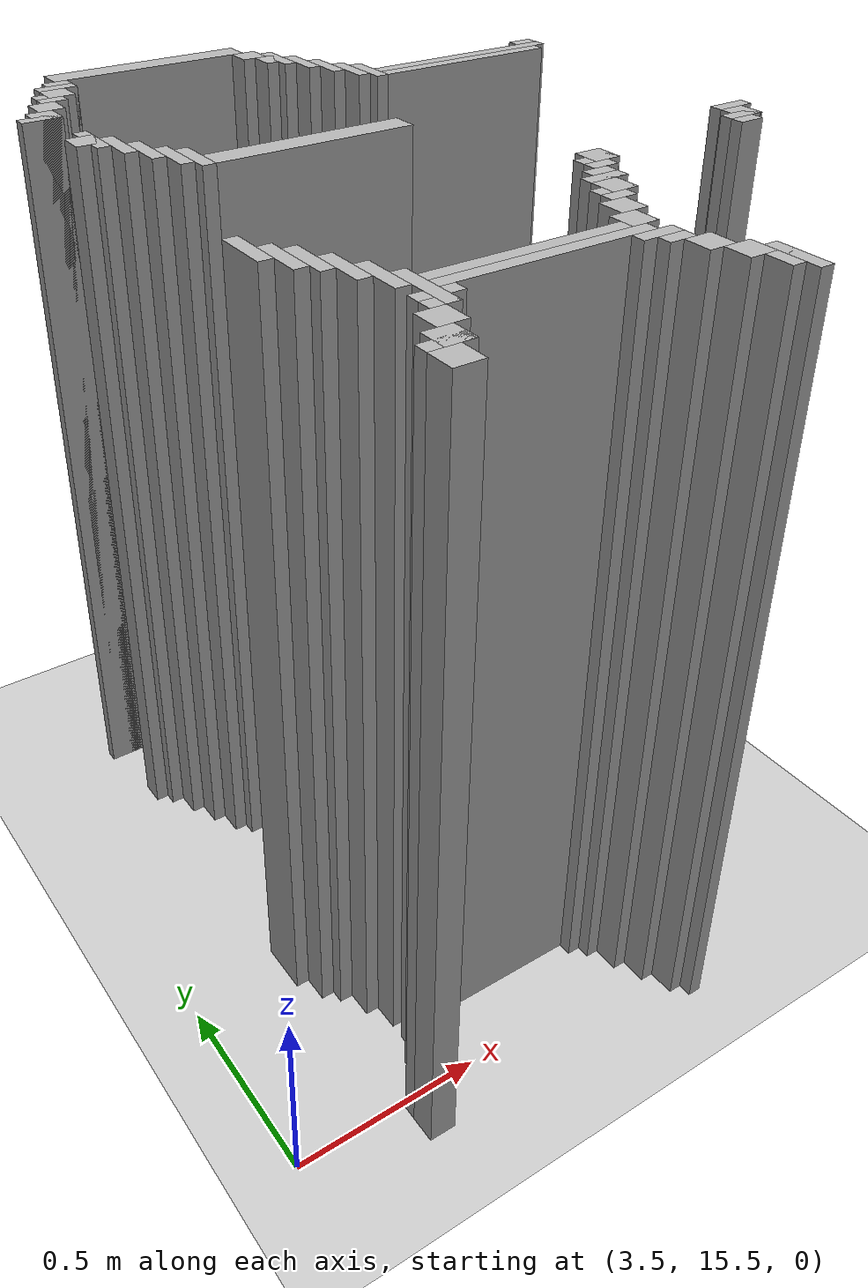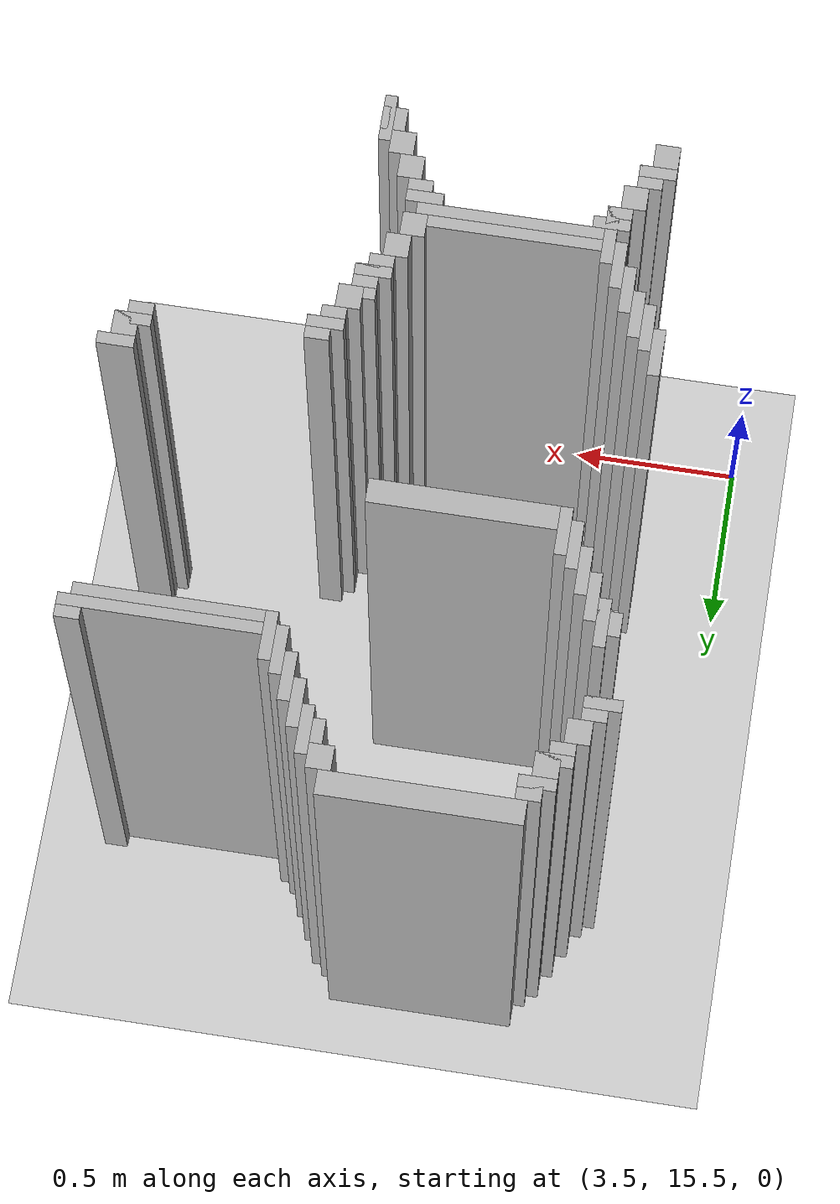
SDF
<sdf version="1.6">
 <world name="slam_world">
  <model name="ground_plane">
   <static>true</static>
   <link name="link">
    <collision name="collision">
     <geometry><plane><normal>0 0 1</normal><size>100 100</size></plane></geometry>
    </collision>
    <visual name="visual">
     <geometry><plane><normal>0 0 1</normal><size>100 100</size></plane></geometry>
     <material>
      <ambient>0.8 0.8 0.8 1</ambient>
      <diffuse>0.8 0.8 0.8 1</diffuse>
      <specular>0.8 0.8 0.8 1</specular>
     </material>
    </visual>
   </link>
  </model>
  <model name="wall_2">
   <static>true</static>
   <pose>4.211136890951276 17.366589327146173 1.0 0 0 0</pose>
   <link name="link">
    <collision name="collision">
     <geometry><box><size>0.5568445475638051 0.06960556844547564 2.0</size></box></geometry>
    </collision>
    <visual name="visual">
     <geometry><box><size>0.5568445475638051 0.06960556844547564 2.0</size></box></geometry>
     <material><ambient>0.5 0.5 0.5 1</ambient><diffuse>0.7 0.7 0.7 1</diffuse></material>
    </visual>
   </link>
  </model>
  <model name="wall_15">
   <static>true</static>
   <pose>3.932714617169373 17.296983758700694 1.0 0 0 0</pose>
   <link name="link">
    <collision name="collision">
     <geometry><box><size>0.06960556844547564 0.06960556844547564 2.0</size></box></geometry>
    </collision>
    <visual name="visual">
     <geometry><box><size>0.06960556844547564 0.06960556844547564 2.0</size></box></geometry>
     <material><ambient>0.5 0.5 0.5 1</ambient><diffuse>0.7 0.7 0.7 1</diffuse></material>
    </visual>
   </link>
  </model>
  <model name="wall_16">
   <static>true</static>
   <pose>4.489559164733178 17.296983758700694 1.0 0 0 0</pose>
   <link name="link">
    <collision name="collision">
     <geometry><box><size>0.06960556844547564 0.06960556844547564 2.0</size></box></geometry>
    </collision>
    <visual name="visual">
     <geometry><box><size>0.06960556844547564 0.06960556844547564 2.0</size></box></geometry>
     <material><ambient>0.5 0.5 0.5 1</ambient><diffuse>0.7 0.7 0.7 1</diffuse></material>
    </visual>
   </link>
  </model>
  <model name="wall_35">
   <static>true</static>
   <pose>3.9153132250580045 17.279582366589327 1.0 0 0 0</pose>
   <link name="link">
    <collision name="collision">
     <geometry><box><size>0.10440835266821345 0.03480278422273782 2.0</size></box></geometry>
    </collision>
    <visual name="visual">
     <geometry><box><size>0.10440835266821345 0.03480278422273782 2.0</size></box></geometry>
     <material><ambient>0.5 0.5 0.5 1</ambient><diffuse>0.7 0.7 0.7 1</diffuse></material>
    </visual>
   </link>
  </model>
  <model name="wall_36">
   <static>true</static>
   <pose>4.541763341067285 17.22737819025522 1.0 0 0 0</pose>
   <link name="link">
    <collision name="collision">
     <geometry><box><size>0.03480278422273782 0.13921113689095127 2.0</size></box></geometry>
    </collision>
    <visual name="visual">
     <geometry><box><size>0.03480278422273782 0.13921113689095127 2.0</size></box></geometry>
     <material><ambient>0.5 0.5 0.5 1</ambient><diffuse>0.7 0.7 0.7 1</diffuse></material>
    </visual>
   </link>
  </model>
  <model name="wall_55">
   <static>true</static>
   <pose>3.897911832946636 17.22737819025522 1.0 0 0 0</pose>
   <link name="link">
    <collision name="collision">
     <geometry><box><size>0.06960556844547564 0.06960556844547564 2.0</size></box></geometry>
    </collision>
    <visual name="visual">
     <geometry><box><size>0.06960556844547564 0.06960556844547564 2.0</size></box></geometry>
     <material><ambient>0.5 0.5 0.5 1</ambient><diffuse>0.7 0.7 0.7 1</diffuse></material>
    </visual>
   </link>
  </model>
  <model name="wall_56">
   <static>true</static>
   <pose>4.524361948955916 17.22737819025522 1.0 0 0 0</pose>
   <link name="link">
    <collision name="collision">
     <geometry><box><size>0.06960556844547564 0.06960556844547564 2.0</size></box></geometry>
    </collision>
    <visual name="visual">
     <geometry><box><size>0.06960556844547564 0.06960556844547564 2.0</size></box></geometry>
     <material><ambient>0.5 0.5 0.5 1</ambient><diffuse>0.7 0.7 0.7 1</diffuse></material>
    </visual>
   </link>
  </model>
  <model name="wall_75">
   <static>true</static>
   <pose>3.8805104408352666 17.209976798143853 1.0 0 0 0</pose>
   <link name="link">
    <collision name="collision">
     <geometry><box><size>0.10440835266821345 0.03480278422273782 2.0</size></box></geometry>
    </collision>
    <visual name="visual">
     <geometry><box><size>0.10440835266821345 0.03480278422273782 2.0</size></box></geometry>
     <material><ambient>0.5 0.5 0.5 1</ambient><diffuse>0.7 0.7 0.7 1</diffuse></material>
    </visual>
   </link>
  </model>
  <model name="wall_76">
   <static>true</static>
   <pose>4.576566125290023 17.157772621809745 1.0 0 0 0</pose>
   <link name="link">
    <collision name="collision">
     <geometry><box><size>0.03480278422273782 0.13921113689095127 2.0</size></box></geometry>
    </collision>
    <visual name="visual">
     <geometry><box><size>0.03480278422273782 0.13921113689095127 2.0</size></box></geometry>
     <material><ambient>0.5 0.5 0.5 1</ambient><diffuse>0.7 0.7 0.7 1</diffuse></material>
    </visual>
   </link>
  </model>
  <model name="wall_93">
   <static>true</static>
   <pose>3.863109048723898 17.17517401392111 1.0 0 0 0</pose>
   <link name="link">
    <collision name="collision">
     <geometry><box><size>0.06960556844547564 0.03480278422273782 2.0</size></box></geometry>
    </collision>
    <visual name="visual">
     <geometry><box><size>0.06960556844547564 0.03480278422273782 2.0</size></box></geometry>
     <material><ambient>0.5 0.5 0.5 1</ambient><diffuse>0.7 0.7 0.7 1</diffuse></material>
    </visual>
   </link>
  </model>
  <model name="wall_105">
   <static>true</static>
   <pose>3.82830626450116 17.122969837587007 1.0 0 0 0</pose>
   <link name="link">
    <collision name="collision">
     <geometry><box><size>0.06960556844547564 0.06960556844547564 2.0</size></box></geometry>
    </collision>
    <visual name="visual">
     <geometry><box><size>0.06960556844547564 0.06960556844547564 2.0</size></box></geometry>
     <material><ambient>0.5 0.5 0.5 1</ambient><diffuse>0.7 0.7 0.7 1</diffuse></material>
    </visual>
   </link>
  </model>
  <model name="wall_106">
   <static>true</static>
   <pose>4.611368909512761 17.08816705336427 1.0 0 0 0</pose>
   <link name="link">
    <collision name="collision">
     <geometry><box><size>0.03480278422273782 0.13921113689095127 2.0</size></box></geometry>
    </collision>
    <visual name="visual">
     <geometry><box><size>0.03480278422273782 0.13921113689095127 2.0</size></box></geometry>
     <material><ambient>0.5 0.5 0.5 1</ambient><diffuse>0.7 0.7 0.7 1</diffuse></material>
    </visual>
   </link>
  </model>
  <model name="wall_125">
   <static>true</static>
   <pose>3.793503480278422 17.053364269141532 1.0 0 0 0</pose>
   <link name="link">
    <collision name="collision">
     <geometry><box><size>0.06960556844547564 0.06960556844547564 2.0</size></box></geometry>
    </collision>
    <visual name="visual">
     <geometry><box><size>0.06960556844547564 0.06960556844547564 2.0</size></box></geometry>
     <material><ambient>0.5 0.5 0.5 1</ambient><diffuse>0.7 0.7 0.7 1</diffuse></material>
    </visual>
   </link>
  </model>
  <model name="wall_126">
   <static>true</static>
   <pose>4.646171693735498 17.01856148491879 1.0 0 0 0</pose>
   <link name="link">
    <collision name="collision">
     <geometry><box><size>0.03480278422273782 0.13921113689095127 2.0</size></box></geometry>
    </collision>
    <visual name="visual">
     <geometry><box><size>0.03480278422273782 0.13921113689095127 2.0</size></box></geometry>
     <material><ambient>0.5 0.5 0.5 1</ambient><diffuse>0.7 0.7 0.7 1</diffuse></material>
    </visual>
   </link>
  </model>
  <model name="wall_145">
   <static>true</static>
   <pose>3.776102088167053 17.035962877030162 1.0 0 0 0</pose>
   <link name="link">
    <collision name="collision">
     <geometry><box><size>0.10440835266821345 0.03480278422273782 2.0</size></box></geometry>
    </collision>
    <visual name="visual">
     <geometry><box><size>0.10440835266821345 0.03480278422273782 2.0</size></box></geometry>
     <material><ambient>0.5 0.5 0.5 1</ambient><diffuse>0.7 0.7 0.7 1</diffuse></material>
    </visual>
   </link>
  </model>
  <model name="wall_146">
   <static>true</static>
   <pose>4.6809744779582365 16.983758700696054 1.0 0 0 0</pose>
   <link name="link">
    <collision name="collision">
     <geometry><box><size>0.03480278422273782 0.13921113689095127 2.0</size></box></geometry>
    </collision>
    <visual name="visual">
     <geometry><box><size>0.03480278422273782 0.13921113689095127 2.0</size></box></geometry>
     <material><ambient>0.5 0.5 0.5 1</ambient><diffuse>0.7 0.7 0.7 1</diffuse></material>
    </visual>
   </link>
  </model>
  <model name="wall_164">
   <static>true</static>
   <pose>5.220417633410673 16.983758700696054 1.0 0 0 0</pose>
   <link name="link">
    <collision name="collision">
     <geometry><box><size>0.06960556844547564 0.06960556844547564 2.0</size></box></geometry>
    </collision>
    <visual name="visual">
     <geometry><box><size>0.06960556844547564 0.06960556844547564 2.0</size></box></geometry>
     <material><ambient>0.5 0.5 0.5 1</ambient><diffuse>0.7 0.7 0.7 1</diffuse></material>
    </visual>
   </link>
  </model>
  <model name="wall_174">
   <static>true</static>
   <pose>4.976798143851508 16.966357308584687 1.0 0 0 0</pose>
   <link name="link">
    <collision name="collision">
     <geometry><box><size>0.5568445475638051 0.03480278422273782 2.0</size></box></geometry>
    </collision>
    <visual name="visual">
     <geometry><box><size>0.5568445475638051 0.03480278422273782 2.0</size></box></geometry>
     <material><ambient>0.5 0.5 0.5 1</ambient><diffuse>0.7 0.7 0.7 1</diffuse></material>
    </visual>
   </link>
  </model>
  <model name="wall_185">
   <static>true</static>
   <pose>4.959396751740139 16.93155452436195 1.0 0 0 0</pose>
   <link name="link">
    <collision name="collision">
     <geometry><box><size>0.5220417633410672 0.03480278422273782 2.0</size></box></geometry>
    </collision>
    <visual name="visual">
     <geometry><box><size>0.5220417633410672 0.03480278422273782 2.0</size></box></geometry>
     <material><ambient>0.5 0.5 0.5 1</ambient><diffuse>0.7 0.7 0.7 1</diffuse></material>
    </visual>
   </link>
  </model>
  <model name="wall_204">
   <static>true</static>
   <pose>3.810904872389791 16.809744779582367 1.0 0 0 0</pose>
   <link name="link">
    <collision name="collision">
     <geometry><box><size>0.03480278422273782 0.13921113689095127 2.0</size></box></geometry>
    </collision>
    <visual name="visual">
     <geometry><box><size>0.03480278422273782 0.13921113689095127 2.0</size></box></geometry>
     <material><ambient>0.5 0.5 0.5 1</ambient><diffuse>0.7 0.7 0.7 1</diffuse></material>
    </visual>
   </link>
  </model>
  <model name="wall_214">
   <static>true</static>
   <pose>3.793503480278422 16.809744779582367 1.0 0 0 0</pose>
   <link name="link">
    <collision name="collision">
     <geometry><box><size>0.06960556844547564 0.06960556844547564 2.0</size></box></geometry>
    </collision>
    <visual name="visual">
     <geometry><box><size>0.06960556844547564 0.06960556844547564 2.0</size></box></geometry>
     <material><ambient>0.5 0.5 0.5 1</ambient><diffuse>0.7 0.7 0.7 1</diffuse></material>
    </visual>
   </link>
  </model>
  <model name="wall_224">
   <static>true</static>
   <pose>3.845707656612529 16.74013921113689 1.0 0 0 0</pose>
   <link name="link">
    <collision name="collision">
     <geometry><box><size>0.03480278422273782 0.13921113689095127 2.0</size></box></geometry>
    </collision>
    <visual name="visual">
     <geometry><box><size>0.03480278422273782 0.13921113689095127 2.0</size></box></geometry>
     <material><ambient>0.5 0.5 0.5 1</ambient><diffuse>0.7 0.7 0.7 1</diffuse></material>
    </visual>
   </link>
  </model>
  <model name="wall_240">
   <static>true</static>
   <pose>3.8805104408352666 16.670533642691414 1.0 0 0 0</pose>
   <link name="link">
    <collision name="collision">
     <geometry><box><size>0.03480278422273782 0.13921113689095127 2.0</size></box></geometry>
    </collision>
    <visual name="visual">
     <geometry><box><size>0.03480278422273782 0.13921113689095127 2.0</size></box></geometry>
     <material><ambient>0.5 0.5 0.5 1</ambient><diffuse>0.7 0.7 0.7 1</diffuse></material>
    </visual>
   </link>
  </model>
  <model name="wall_250">
   <static>true</static>
   <pose>3.9153132250580045 16.60092807424594 1.0 0 0 0</pose>
   <link name="link">
    <collision name="collision">
     <geometry><box><size>0.03480278422273782 0.13921113689095127 2.0</size></box></geometry>
    </collision>
    <visual name="visual">
     <geometry><box><size>0.03480278422273782 0.13921113689095127 2.0</size></box></geometry>
     <material><ambient>0.5 0.5 0.5 1</ambient><diffuse>0.7 0.7 0.7 1</diffuse></material>
    </visual>
   </link>
  </model>
  <model name="wall_260">
   <static>true</static>
   <pose>3.9501160092807424 16.5661252900232 1.0 0 0 0</pose>
   <link name="link">
    <collision name="collision">
     <geometry><box><size>0.03480278422273782 0.13921113689095127 2.0</size></box></geometry>
    </collision>
    <visual name="visual">
     <geometry><box><size>0.03480278422273782 0.13921113689095127 2.0</size></box></geometry>
     <material><ambient>0.5 0.5 0.5 1</ambient><diffuse>0.7 0.7 0.7 1</diffuse></material>
    </visual>
   </link>
  </model>
  <model name="wall_277">
   <static>true</static>
   <pose>4.228538283062645 16.531322505800464 1.0 0 0 0</pose>
   <link name="link">
    <collision name="collision">
     <geometry><box><size>0.5220417633410672 0.06960556844547564 2.0</size></box></geometry>
    </collision>
    <visual name="visual">
     <geometry><box><size>0.5220417633410672 0.06960556844547564 2.0</size></box></geometry>
     <material><ambient>0.5 0.5 0.5 1</ambient><diffuse>0.7 0.7 0.7 1</diffuse></material>
    </visual>
   </link>
  </model>
  <model name="wall_387">
   <static>true</static>
   <pose>5.237819025522041 16.200696055684453 1.0 0 0 0</pose>
   <link name="link">
    <collision name="collision">
     <geometry><box><size>0.10440835266821345 0.03480278422273782 2.0</size></box></geometry>
    </collision>
    <visual name="visual">
     <geometry><box><size>0.10440835266821345 0.03480278422273782 2.0</size></box></geometry>
     <material><ambient>0.5 0.5 0.5 1</ambient><diffuse>0.7 0.7 0.7 1</diffuse></material>
    </visual>
   </link>
  </model>
  <model name="wall_395">
   <static>true</static>
   <pose>5.220417633410673 16.14849187935035 1.0 0 0 0</pose>
   <link name="link">
    <collision name="collision">
     <geometry><box><size>0.06960556844547564 0.06960556844547564 2.0</size></box></geometry>
    </collision>
    <visual name="visual">
     <geometry><box><size>0.06960556844547564 0.06960556844547564 2.0</size></box></geometry>
     <material><ambient>0.5 0.5 0.5 1</ambient><diffuse>0.7 0.7 0.7 1</diffuse></material>
    </visual>
   </link>
  </model>
  <model name="wall_408">
   <static>true</static>
   <pose>5.203016241299304 16.13109048723898 1.0 0 0 0</pose>
   <link name="link">
    <collision name="collision">
     <geometry><box><size>0.10440835266821345 0.03480278422273782 2.0</size></box></geometry>
    </collision>
    <visual name="visual">
     <geometry><box><size>0.10440835266821345 0.03480278422273782 2.0</size></box></geometry>
     <material><ambient>0.5 0.5 0.5 1</ambient><diffuse>0.7 0.7 0.7 1</diffuse></material>
    </visual>
   </link>
  </model>
  <model name="wall_419">
   <static>true</static>
   <pose>4.698375870069605 16.07888631090487 1.0 0 0 0</pose>
   <link name="link">
    <collision name="collision">
     <geometry><box><size>0.06960556844547564 0.06960556844547564 2.0</size></box></geometry>
    </collision>
    <visual name="visual">
     <geometry><box><size>0.06960556844547564 0.06960556844547564 2.0</size></box></geometry>
     <material><ambient>0.5 0.5 0.5 1</ambient><diffuse>0.7 0.7 0.7 1</diffuse></material>
    </visual>
   </link>
  </model>
  <model name="wall_420">
   <static>true</static>
   <pose>5.185614849187935 16.09628770301624 1.0 0 0 0</pose>
   <link name="link">
    <collision name="collision">
     <geometry><box><size>0.06960556844547564 0.03480278422273782 2.0</size></box></geometry>
    </collision>
    <visual name="visual">
     <geometry><box><size>0.06960556844547564 0.03480278422273782 2.0</size></box></geometry>
     <material><ambient>0.5 0.5 0.5 1</ambient><diffuse>0.7 0.7 0.7 1</diffuse></material>
    </visual>
   </link>
  </model>
  <model name="wall_432">
   <static>true</static>
   <pose>3.776102088167053 16.009280742459396 1.0 0 0 0</pose>
   <link name="link">
    <collision name="collision">
     <geometry><box><size>0.03480278422273782 0.13921113689095127 2.0</size></box></geometry>
    </collision>
    <visual name="visual">
     <geometry><box><size>0.03480278422273782 0.13921113689095127 2.0</size></box></geometry>
     <material><ambient>0.5 0.5 0.5 1</ambient><diffuse>0.7 0.7 0.7 1</diffuse></material>
    </visual>
   </link>
  </model>
  <model name="wall_433">
   <static>true</static>
   <pose>4.6809744779582365 16.061484918793504 1.0 0 0 0</pose>
   <link name="link">
    <collision name="collision">
     <geometry><box><size>0.10440835266821345 0.03480278422273782 2.0</size></box></geometry>
    </collision>
    <visual name="visual">
     <geometry><box><size>0.10440835266821345 0.03480278422273782 2.0</size></box></geometry>
     <material><ambient>0.5 0.5 0.5 1</ambient><diffuse>0.7 0.7 0.7 1</diffuse></material>
    </visual>
   </link>
  </model>
  <model name="wall_448">
   <static>true</static>
   <pose>4.663573085846868 16.026682134570766 1.0 0 0 0</pose>
   <link name="link">
    <collision name="collision">
     <geometry><box><size>0.06960556844547564 0.03480278422273782 2.0</size></box></geometry>
    </collision>
    <visual name="visual">
     <geometry><box><size>0.06960556844547564 0.03480278422273782 2.0</size></box></geometry>
     <material><ambient>0.5 0.5 0.5 1</ambient><diffuse>0.7 0.7 0.7 1</diffuse></material>
    </visual>
   </link>
  </model>
  <model name="wall_462">
   <static>true</static>
   <pose>3.810904872389791 15.93967517401392 1.0 0 0 0</pose>
   <link name="link">
    <collision name="collision">
     <geometry><box><size>0.03480278422273782 0.13921113689095127 2.0</size></box></geometry>
    </collision>
    <visual name="visual">
     <geometry><box><size>0.03480278422273782 0.13921113689095127 2.0</size></box></geometry>
     <material><ambient>0.5 0.5 0.5 1</ambient><diffuse>0.7 0.7 0.7 1</diffuse></material>
    </visual>
   </link>
  </model>
  <model name="wall_463">
   <static>true</static>
   <pose>4.6287703016241295 15.974477958236658 1.0 0 0 0</pose>
   <link name="link">
    <collision name="collision">
     <geometry><box><size>0.06960556844547564 0.06960556844547564 2.0</size></box></geometry>
    </collision>
    <visual name="visual">
     <geometry><box><size>0.06960556844547564 0.06960556844547564 2.0</size></box></geometry>
     <material><ambient>0.5 0.5 0.5 1</ambient><diffuse>0.7 0.7 0.7 1</diffuse></material>
    </visual>
   </link>
  </model>
  <model name="wall_477">
   <static>true</static>
   <pose>3.845707656612529 15.904872389791183 1.0 0 0 0</pose>
   <link name="link">
    <collision name="collision">
     <geometry><box><size>0.03480278422273782 0.13921113689095127 2.0</size></box></geometry>
    </collision>
    <visual name="visual">
     <geometry><box><size>0.03480278422273782 0.13921113689095127 2.0</size></box></geometry>
     <material><ambient>0.5 0.5 0.5 1</ambient><diffuse>0.7 0.7 0.7 1</diffuse></material>
    </visual>
   </link>
  </model>
  <model name="wall_478">
   <static>true</static>
   <pose>4.611368909512761 15.95707656612529 1.0 0 0 0</pose>
   <link name="link">
    <collision name="collision">
     <geometry><box><size>0.10440835266821345 0.03480278422273782 2.0</size></box></geometry>
    </collision>
    <visual name="visual">
     <geometry><box><size>0.10440835266821345 0.03480278422273782 2.0</size></box></geometry>
     <material><ambient>0.5 0.5 0.5 1</ambient><diffuse>0.7 0.7 0.7 1</diffuse></material>
    </visual>
   </link>
  </model>
  <model name="wall_491">
   <static>true</static>
   <pose>4.593967517401392 15.904872389791183 1.0 0 0 0</pose>
   <link name="link">
    <collision name="collision">
     <geometry><box><size>0.06960556844547564 0.06960556844547564 2.0</size></box></geometry>
    </collision>
    <visual name="visual">
     <geometry><box><size>0.06960556844547564 0.06960556844547564 2.0</size></box></geometry>
     <material><ambient>0.5 0.5 0.5 1</ambient><diffuse>0.7 0.7 0.7 1</diffuse></material>
    </visual>
   </link>
  </model>
  <model name="wall_501">
   <static>true</static>
   <pose>3.8805104408352666 15.835266821345707 1.0 0 0 0</pose>
   <link name="link">
    <collision name="collision">
     <geometry><box><size>0.03480278422273782 0.13921113689095127 2.0</size></box></geometry>
    </collision>
    <visual name="visual">
     <geometry><box><size>0.03480278422273782 0.13921113689095127 2.0</size></box></geometry>
     <material><ambient>0.5 0.5 0.5 1</ambient><diffuse>0.7 0.7 0.7 1</diffuse></material>
    </visual>
   </link>
  </model>
  <model name="wall_502">
   <static>true</static>
   <pose>4.576566125290023 15.887470997679813 1.0 0 0 0</pose>
   <link name="link">
    <collision name="collision">
     <geometry><box><size>0.10440835266821345 0.03480278422273782 2.0</size></box></geometry>
    </collision>
    <visual name="visual">
     <geometry><box><size>0.10440835266821345 0.03480278422273782 2.0</size></box></geometry>
     <material><ambient>0.5 0.5 0.5 1</ambient><diffuse>0.7 0.7 0.7 1</diffuse></material>
    </visual>
   </link>
  </model>
  <model name="wall_515">
   <static>true</static>
   <pose>4.559164733178654 15.852668213457076 1.0 0 0 0</pose>
   <link name="link">
    <collision name="collision">
     <geometry><box><size>0.06960556844547564 0.03480278422273782 2.0</size></box></geometry>
    </collision>
    <visual name="visual">
     <geometry><box><size>0.06960556844547564 0.03480278422273782 2.0</size></box></geometry>
     <material><ambient>0.5 0.5 0.5 1</ambient><diffuse>0.7 0.7 0.7 1</diffuse></material>
    </visual>
   </link>
  </model>
  <model name="wall_524">
   <static>true</static>
   <pose>3.9153132250580045 15.765661252900232 1.0 0 0 0</pose>
   <link name="link">
    <collision name="collision">
     <geometry><box><size>0.03480278422273782 0.13921113689095127 2.0</size></box></geometry>
    </collision>
    <visual name="visual">
     <geometry><box><size>0.03480278422273782 0.13921113689095127 2.0</size></box></geometry>
     <material><ambient>0.5 0.5 0.5 1</ambient><diffuse>0.7 0.7 0.7 1</diffuse></material>
    </visual>
   </link>
  </model>
  <model name="wall_525">
   <static>true</static>
   <pose>4.524361948955916 15.80046403712297 1.0 0 0 0</pose>
   <link name="link">
    <collision name="collision">
     <geometry><box><size>0.06960556844547564 0.06960556844547564 2.0</size></box></geometry>
    </collision>
    <visual name="visual">
     <geometry><box><size>0.06960556844547564 0.06960556844547564 2.0</size></box></geometry>
     <material><ambient>0.5 0.5 0.5 1</ambient><diffuse>0.7 0.7 0.7 1</diffuse></material>
    </visual>
   </link>
  </model>
  <model name="wall_539">
   <static>true</static>
   <pose>3.9501160092807424 15.678654292343387 1.0 0 0 0</pose>
   <link name="link">
    <collision name="collision">
     <geometry><box><size>0.03480278422273782 0.17401392111368907 2.0</size></box></geometry>
    </collision>
    <visual name="visual">
     <geometry><box><size>0.03480278422273782 0.17401392111368907 2.0</size></box></geometry>
     <material><ambient>0.5 0.5 0.5 1</ambient><diffuse>0.7 0.7 0.7 1</diffuse></material>
    </visual>
   </link>
  </model>
  <model name="wall_540">
   <static>true</static>
   <pose>4.489559164733178 15.730858468677493 1.0 0 0 0</pose>
   <link name="link">
    <collision name="collision">
     <geometry><box><size>0.06960556844547564 0.06960556844547564 2.0</size></box></geometry>
    </collision>
    <visual name="visual">
     <geometry><box><size>0.06960556844547564 0.06960556844547564 2.0</size></box></geometry>
     <material><ambient>0.5 0.5 0.5 1</ambient><diffuse>0.7 0.7 0.7 1</diffuse></material>
    </visual>
   </link>
  </model>
  <model name="wall_555">
   <static>true</static>
   <pose>4.2459396751740135 15.713457076566124 1.0 0 0 0</pose>
   <link name="link">
    <collision name="collision">
     <geometry><box><size>0.5568445475638051 0.03480278422273782 2.0</size></box></geometry>
    </collision>
    <visual name="visual">
     <geometry><box><size>0.5568445475638051 0.03480278422273782 2.0</size></box></geometry>
     <material><ambient>0.5 0.5 0.5 1</ambient><diffuse>0.7 0.7 0.7 1</diffuse></material>
    </visual>
   </link>
  </model>
  <model name="wall_567">
   <static>true</static>
   <pose>4.228538283062645 15.678654292343387 1.0 0 0 0</pose>
   <link name="link">
    <collision name="collision">
     <geometry><box><size>0.5220417633410672 0.03480278422273782 2.0</size></box></geometry>
    </collision>
    <visual name="visual">
     <geometry><box><size>0.5220417633410672 0.03480278422273782 2.0</size></box></geometry>
     <material><ambient>0.5 0.5 0.5 1</ambient><diffuse>0.7 0.7 0.7 1</diffuse></material>
    </visual>
   </link>
  </model>
  <model name="wall_580">
   <static>true</static>
   <pose>3.9501160092807424 15.64385150812065 1.0 0 0 0</pose>
   <link name="link">
    <collision name="collision">
     <geometry><box><size>0.10440835266821345 0.03480278422273782 2.0</size></box></geometry>
    </collision>
    <visual name="visual">
     <geometry><box><size>0.10440835266821345 0.03480278422273782 2.0</size></box></geometry>
     <material><ambient>0.5 0.5 0.5 1</ambient><diffuse>0.7 0.7 0.7 1</diffuse></material>
    </visual>
   </link>
  </model>
  <model name="wall_581">
   <static>true</static>
   <pose>4.472157772621809 15.64385150812065 1.0 0 0 0</pose>
   <link name="link">
    <collision name="collision">
     <geometry><box><size>0.10440835266821345 0.03480278422273782 2.0</size></box></geometry>
    </collision>
    <visual name="visual">
     <geometry><box><size>0.10440835266821345 0.03480278422273782 2.0</size></box></geometry>
     <material><ambient>0.5 0.5 0.5 1</ambient><diffuse>0.7 0.7 0.7 1</diffuse></material>
    </visual>
   </link>
  </model>
  <model name="wall_599">
   <static>true</static>
   <pose>3.932714617169373 15.609048723897912 1.0 0 0 0</pose>
   <link name="link">
    <collision name="collision">
     <geometry><box><size>0.06960556844547564 0.03480278422273782 2.0</size></box></geometry>
    </collision>
    <visual name="visual">
     <geometry><box><size>0.06960556844547564 0.03480278422273782 2.0</size></box></geometry>
     <material><ambient>0.5 0.5 0.5 1</ambient><diffuse>0.7 0.7 0.7 1</diffuse></material>
    </visual>
   </link>
  </model>
  <model name="wall_600">
   <static>true</static>
   <pose>4.489559164733178 15.609048723897912 1.0 0 0 0</pose>
   <link name="link">
    <collision name="collision">
     <geometry><box><size>0.06960556844547564 0.03480278422273782 2.0</size></box></geometry>
    </collision>
    <visual name="visual">
     <geometry><box><size>0.06960556844547564 0.03480278422273782 2.0</size></box></geometry>
     <material><ambient>0.5 0.5 0.5 1</ambient><diffuse>0.7 0.7 0.7 1</diffuse></material>
    </visual>
   </link>
  </model>
  <model name="wall_615">
   <static>true</static>
   <pose>3.897911832946636 15.556844547563804 1.0 0 0 0</pose>
   <link name="link">
    <collision name="collision">
     <geometry><box><size>0.06960556844547564 0.06960556844547564 2.0</size></box></geometry>
    </collision>
    <visual name="visual">
     <geometry><box><size>0.06960556844547564 0.06960556844547564 2.0</size></box></geometry>
     <material><ambient>0.5 0.5 0.5 1</ambient><diffuse>0.7 0.7 0.7 1</diffuse></material>
    </visual>
   </link>
  </model>
  <model name="wall_616">
   <static>true</static>
   <pose>4.524361948955916 15.556844547563804 1.0 0 0 0</pose>
   <link name="link">
    <collision name="collision">
     <geometry><box><size>0.06960556844547564 0.06960556844547564 2.0</size></box></geometry>
    </collision>
    <visual name="visual">
     <geometry><box><size>0.06960556844547564 0.06960556844547564 2.0</size></box></geometry>
     <material><ambient>0.5 0.5 0.5 1</ambient><diffuse>0.7 0.7 0.7 1</diffuse></material>
    </visual>
   </link>
  </model>
  <model name="wall_631">
   <static>true</static>
   <pose>3.863109048723898 15.48723897911833 1.0 0 0 0</pose>
   <link name="link">
    <collision name="collision">
     <geometry><box><size>0.06960556844547564 0.06960556844547564 2.0</size></box></geometry>
    </collision>
    <visual name="visual">
     <geometry><box><size>0.06960556844547564 0.06960556844547564 2.0</size></box></geometry>
     <material><ambient>0.5 0.5 0.5 1</ambient><diffuse>0.7 0.7 0.7 1</diffuse></material>
    </visual>
   </link>
  </model>
  <model name="wall_632">
   <static>true</static>
   <pose>4.559164733178654 15.48723897911833 1.0 0 0 0</pose>
   <link name="link">
    <collision name="collision">
     <geometry><box><size>0.06960556844547564 0.06960556844547564 2.0</size></box></geometry>
    </collision>
    <visual name="visual">
     <geometry><box><size>0.06960556844547564 0.06960556844547564 2.0</size></box></geometry>
     <material><ambient>0.5 0.5 0.5 1</ambient><diffuse>0.7 0.7 0.7 1</diffuse></material>
    </visual>
   </link>
  </model>
  <model name="wall_647">
   <static>true</static>
   <pose>3.845707656612529 15.46983758700696 1.0 0 0 0</pose>
   <link name="link">
    <collision name="collision">
     <geometry><box><size>0.10440835266821345 0.03480278422273782 2.0</size></box></geometry>
    </collision>
    <visual name="visual">
     <geometry><box><size>0.10440835266821345 0.03480278422273782 2.0</size></box></geometry>
     <material><ambient>0.5 0.5 0.5 1</ambient><diffuse>0.7 0.7 0.7 1</diffuse></material>
    </visual>
   </link>
  </model>
  <model name="wall_648">
   <static>true</static>
   <pose>4.611368909512761 15.417633410672853 1.0 0 0 0</pose>
   <link name="link">
    <collision name="collision">
     <geometry><box><size>0.03480278422273782 0.13921113689095127 2.0</size></box></geometry>
    </collision>
    <visual name="visual">
     <geometry><box><size>0.03480278422273782 0.13921113689095127 2.0</size></box></geometry>
     <material><ambient>0.5 0.5 0.5 1</ambient><diffuse>0.7 0.7 0.7 1</diffuse></material>
    </visual>
   </link>
  </model>
  <model name="wall_661">
   <static>true</static>
   <pose>3.82830626450116 15.417633410672853 1.0 0 0 0</pose>
   <link name="link">
    <collision name="collision">
     <geometry><box><size>0.06960556844547564 0.06960556844547564 2.0</size></box></geometry>
    </collision>
    <visual name="visual">
     <geometry><box><size>0.06960556844547564 0.06960556844547564 2.0</size></box></geometry>
     <material><ambient>0.5 0.5 0.5 1</ambient><diffuse>0.7 0.7 0.7 1</diffuse></material>
    </visual>
   </link>
  </model>
  <model name="wall_662">
   <static>true</static>
   <pose>4.593967517401392 15.417633410672853 1.0 0 0 0</pose>
   <link name="link">
    <collision name="collision">
     <geometry><box><size>0.06960556844547564 0.06960556844547564 2.0</size></box></geometry>
    </collision>
    <visual name="visual">
     <geometry><box><size>0.06960556844547564 0.06960556844547564 2.0</size></box></geometry>
     <material><ambient>0.5 0.5 0.5 1</ambient><diffuse>0.7 0.7 0.7 1</diffuse></material>
    </visual>
   </link>
  </model>
 </world>
</sdf>
